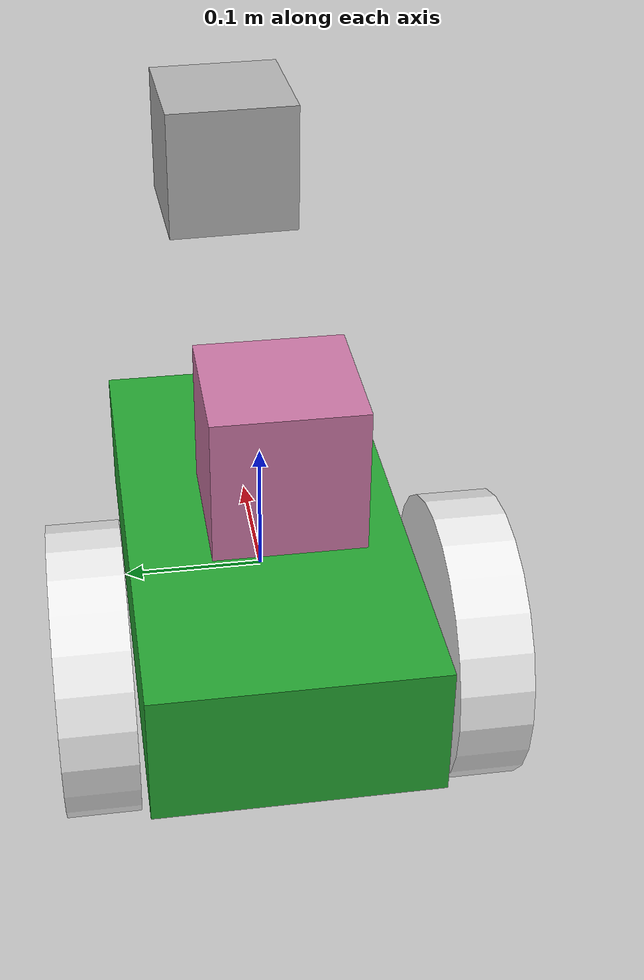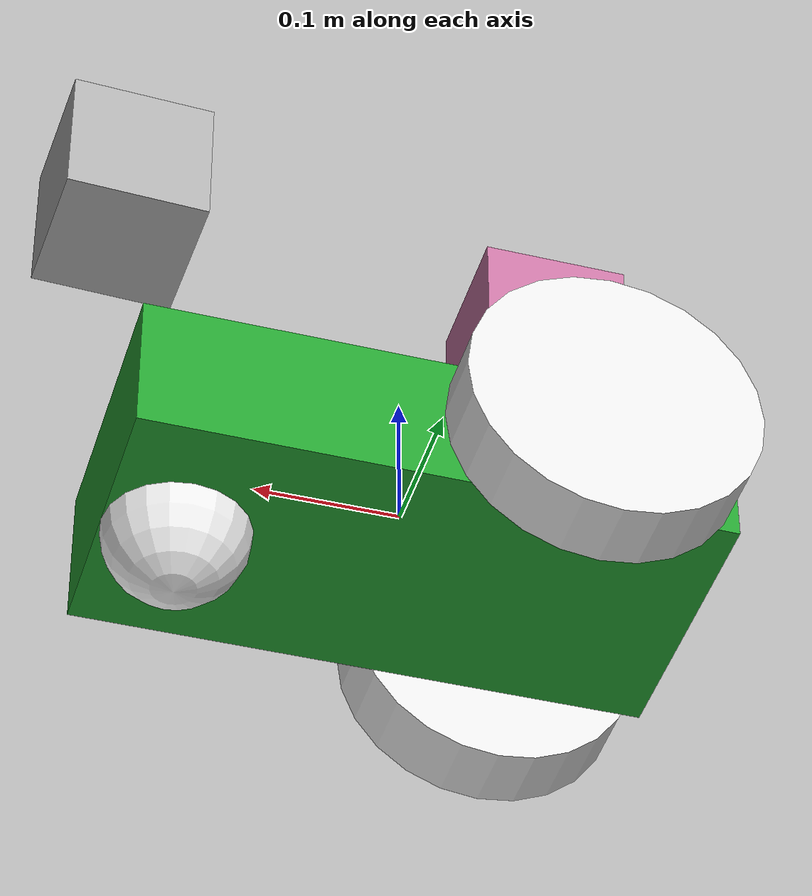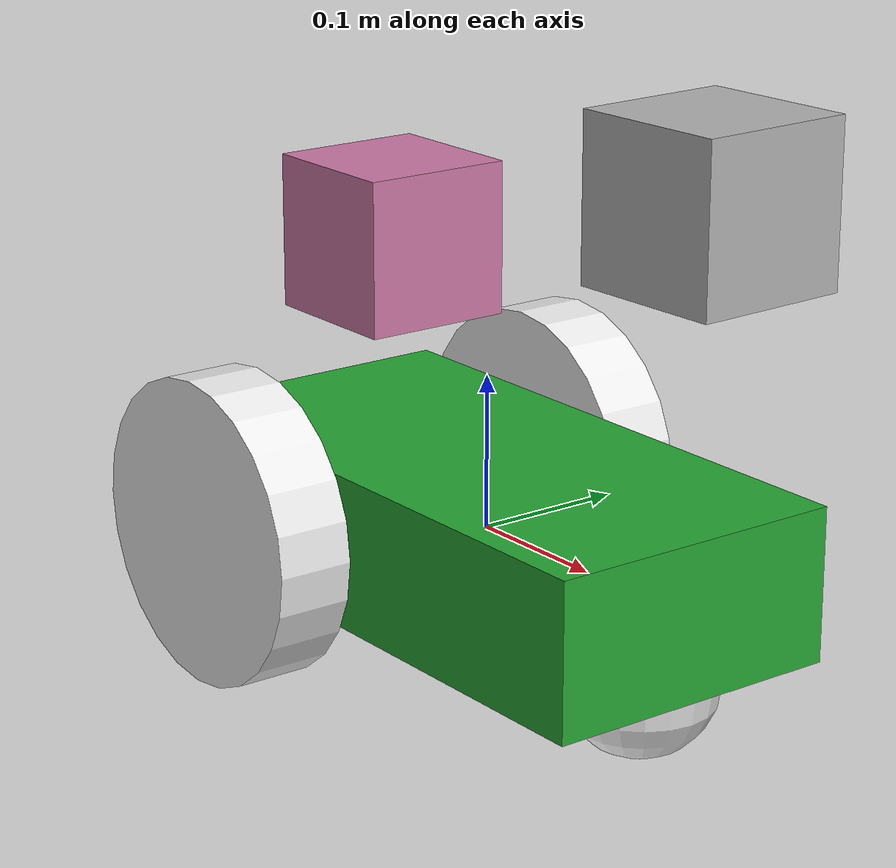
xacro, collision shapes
<?xml version="1.0"?>
<robot name="ExamRobot" xmlns:xacro="http://www.ros.org/wiki/xacro">

<xacro:property name="PI" value="3.1415926535897931"/>

    <!-- Start of Links - first link must be a non-inertial link -->
    <link name='base_link'>
    </link>
	  <link name='base_footprint'>
    </link>

    <link name="chassis">
        <inertial>
            <mass value="10"/>
            <inertia ixx="0.1" ixy="0.0" ixz="0.0" iyy="0.1" iyz="0.0" izz="0.1"/>
        </inertial>
        <collision name="chassis">
            <geometry>
                <box size=".4 .2 .1" />
            </geometry>
        </collision>
        <visual name="chassis">
        <origin rpy="1.55 0 3.15" xyz="0.1 -0.08 0.0"/>
            <geometry>
               <mesh filename="package://examtask/meshes/Car1.stl"  scale="0.11 0.11 0.11"/>
            </geometry>
        </visual>
    </link>

    <link name="castor">
        <inertial>
            <mass value=".1"/>
            <inertia ixx="0.004" ixy="0.0" ixz="0.0" iyy="0.004" iyz="0.0" izz="0.002"/>
        </inertial>
        <collision name="castor">
            <geometry>
                <sphere radius=".05" />
            </geometry>
        </collision>
        <visual name="castor">
            <geometry>
                <sphere radius=".05" />
            </geometry>
        </visual>
    </link>

    <link name="left_wheel">
        <inertial>
            <mass value=".5"/>
            <inertia ixx="0.004" ixy="0.0" ixz="0.0" iyy="0.004" iyz="0.0" izz="0.002"/>
        </inertial>
        <pose>0.1 0.13 0.1 0 1.5707 1.5707</pose>
        <collision name="left_wheel">
            <geometry>
                <cylinder radius='.1' length='.05'/>
            </geometry>
        </collision>
        <visual name="left_wheel">
            <geometry>
                <cylinder radius='.1' length='.05'/>
            </geometry>
        </visual>
    </link>

    <link name="right_wheel">
        <inertial>
            <mass value=".5"/>
            <inertia ixx="0.004" ixy="0.0" ixz="0.0" iyy="0.004" iyz="0.0" izz="0.002"/>
        </inertial>
        <pose>0.1 0.13 0.1 0 1.5707 1.5707</pose>
        <collision name="right_wheel">
            <geometry>
                <cylinder radius='.1' length='.05'/>
            </geometry>
        </collision>
        <visual name="right_wheel">
            <geometry>
                <cylinder radius='.1' length='.05'/>
            </geometry>
        </visual>
    </link>

  <!-- Hokuyo Laser -->
  <link name="hokuyo_link">
    <collision>
      <origin xyz="0 0 0.05" rpy="0 0 0"/>
      <geometry>
    <box size="0.1 0.1 0.1"/>
      </geometry>
    </collision>

    <visual>
      <origin xyz="0 0 0.05" rpy="0 0 0"/>
      <geometry>
        <mesh filename="package://examtask/meshes/hokuyo.dae"/>
      </geometry>
    </visual>

    <inertial>
      <mass value="1e-5" />
      <origin xyz="0 0 0" rpy="0 0 0"/>
      <inertia ixx="1e-6" ixy="0" ixz="0" iyy="1e-6" iyz="0" izz="1e-6" />
    </inertial>
  </link>

  <link name="camera_point_link">
    <collision>
      <origin rpy="1.5708 0 4.75" xyz="-0.3 0 0.15"/>
      <geometry>
       <box size="0.1 0.1 0.1"/>
      </geometry>
      </collision>

     <inertial>
      <mass value="1e-5" />
      <origin xyz="0 0 0" rpy="0 0 0"/>
      <inertia ixx="1e-6" ixy="0" ixz="0" iyy="1e-6" iyz="0" izz="1e-6" />
    </inertial>

</link>

    <!-- Start of Joints - connecting all links together -->

    <joint name="joint0" type="fixed">
        <parent link="base_link"/>
        <child link="chassis"/>
        <origin xyz="0 0 0" rpy="0 0 0"/>
        <axis xyz="0 1 0"/>
        <dynamics damping="0.7"/>
    </joint>

    <joint name="jointA" type="fixed">
        <parent link="base_link"/>
        <child link="base_footprint"/>
        <origin xyz="0 0 0" rpy="0 0 0"/>
        <axis xyz="0 1 0"/>
        <dynamics damping="0.7"/>
    </joint>

    <joint name="joint1" type="fixed">
        <parent link="chassis"/>
        <child link="castor"/>
        <origin xyz=".15 0 -.05" rpy="0 0 0"/>
        <axis xyz="0 1 0"/>
        <dynamics damping="0.7"/>
    </joint>

    <joint type="continuous" name="wheel_left_joint">
        <parent link="chassis"/>
        <child link="left_wheel"/>
        <origin xyz="-0.1 0.13 0" rpy="0 1.5707 1.5707"/>
        <axis xyz="0 0 1"/>
        <calibration rising="0.0"/>
        <dynamics damping="0.0" friction="0.0"/>
        <limit effort="30" velocity="2.0" />
        <safety_controller k_velocity="10" k_position="15" soft_lower_limit="-2.0" soft_upper_limit="0.5" />
    </joint>

    <joint type="continuous" name="wheel_right_joint">
        <parent link="chassis"/>
        <child link="right_wheel"/>
        <origin xyz="-0.1 -0.13 0" rpy="0 1.5707 1.5707"/>
        <axis xyz="0 0 1"/>
        <calibration rising="0.0"/>
        <dynamics damping="0.0" friction="0.0"/>
        <limit effort="30" velocity="2.0" />
        <safety_controller k_velocity="10" k_position="15" soft_lower_limit="-2.0" soft_upper_limit="0.5" />
    </joint>
    <joint name="hokuyo_joint" type="fixed">
        <axis xyz="0 1 0" />
        <origin xyz="-0.1 0 .12" rpy="0 0 ${PI}"/>
        <parent link="base_link"/>
        <child link="hokuyo_link"/>
            <dynamics damping="0.7"/>
      </joint>

      <joint name="joint_base_to_camera" type="fixed">
    <axis xyz="0 1 0" />
    <origin xyz="0.5 0 .1" rpy="0 0 0"/>
    <parent link="base_link"/>
    <child link="camera_point_link"/>
    <dynamics damping="0.7"/>
  </joint>

    <!-- Transmissions are where the ros_controller interacts -->
    <ros2_control name="GazeboSystem" type="system">
      <hardware>
        <plugin>gazebo_ros2_control/GazeboSystem</plugin>
      </hardware>
      <joint name="wheel_left_joint">
        <command_interface name="velocity">
          <param name="min">-1</param>
          <param name="max">1</param>
        </command_interface>
        <state_interface name="position">
          <param name="initial_value">0.0</param>
        </state_interface>
        <state_interface name="velocity">
          <param name="initial_value">0.0</param>
        </state_interface>
      </joint>
      <joint name="wheel_right_joint">
        <command_interface name="velocity">
          <param name="min">-1</param>
          <param name="max">1</param>
        </command_interface>
        <state_interface name="position">
          <param name="initial_value">0.0</param>
        </state_interface>
        <state_interface name="velocity">
          <param name="initial_value">0.0</param>
        </state_interface>
      </joint>
    </ros2_control>

  <gazebo>
    <!-- Joint state publisher -->
    <plugin filename="libgazebo_ros2_control.so" name="gazebo_ros2_control">
      <parameters>$(find examtask)/config/simple_diff_drive.yaml</parameters>

    </plugin>
  </gazebo>

  <gazebo reference="chassis">
  	<material>Gazebo/Green</material>
    	<mu1>.01</mu1>
    	<mu2>.01</mu2>
        <fdir1>1.000000 0.000000 0.000000</fdir1>
        <slip1>1.000000</slip1>
        <slip2>1.000000</slip2>
  </gazebo>

  <gazebo reference="left_wheel">
    	<material>Gazebo/White</material>
    	<mu1>100000</mu1>
    	<mu2>100000</mu2>
        <fdir1>1.000000 0.000000 0.000000</fdir1>
        <slip1>0.000000</slip1>
        <slip2>0.000000</slip2>
  </gazebo>

  <gazebo reference="right_wheel">
    	<material>Gazebo/White</material>
    	<mu1>100000</mu1>
    	<mu2>100000</mu2>
        <fdir1>1.000000 0.000000 0.000000</fdir1>
        <slip1>0.000000</slip1>
        <slip2>0.000000</slip2>
  </gazebo>
  <gazebo reference="castor">
  	<material>Gazebo/White</material>
    	<mu1>.01</mu1>
    	<mu2>.01</mu2>
        <fdir1>1.000000 0.000000 0.000000</fdir1>
        <slip1>1.000000</slip1>
        <slip2>1.000000</slip2>
  </gazebo>

<gazebo reference="hokuyo_link">
  <sensor name="lidar" type="ray">
    <pose>0.215 0 0.215 0 0 0</pose>
    <always_on>true</always_on>
    <visualize>true</visualize>
    <update_rate>5</update_rate>
    <ray>
      <scan>
        <horizontal>
          <samples>720</samples>
          <resolution>1.00000</resolution>
          <min_angle>0.000000</min_angle>
          <max_angle>6.280000</max_angle>
        </horizontal>
      </scan>
      <range>
        <min>0.120000</min>
        <max>14</max>
        <resolution>0.015000</resolution>
      </range>
      <noise>
        <type>gaussian</type>
        <mean>0.0</mean>
        <stddev>0.001</stddev>
      </noise>
    </ray>
    <plugin name="scan" filename="libgazebo_ros_ray_sensor.so">
      <ros>
        <remapping>~/out:=scan</remapping>
      </ros>
      <output_type>sensor_msgs/LaserScan</output_type>
      <frame_name>hokuyo_link</frame_name>
    </plugin>
  </sensor>
  </gazebo>

<gazebo reference="camera_point_link">
<sensor type="camera" name="camera1">
<update_rate>30.0</update_rate>
<camera name="head">
<horizontal_fov>1.3962634</horizontal_fov>
<image>
<width>800</width>
<height>800</height>
<format>R8G8B8</format>
</image>
<clip>
<near>0.02</near>
<far>300</far>
</clip>
<noise>
<type>gaussian</type>
<!-- Noise is sampled independently per pixel on each frame.
That pixel’s noise value is added to each of its color
channels, which at that point lie in the range [0,1]. -->
<mean>0.0</mean>
<stddev>0.007</stddev>
</noise>
</camera>
<plugin name="camera_controller" filename="libgazebo_ros_camera.so">
<alwaysOn>true</alwaysOn>
<updateRate>0.0</updateRate>
<cameraName>/camera</cameraName>
<imageTopicName>image_raw</imageTopicName>
<cameraInfoTopicName>camera_info</cameraInfoTopicName>
<frameName>camera_point_link</frameName>
<hackBaseline>0.07</hackBaseline>
<distortionK1>0.0</distortionK1>
<distortionK2>0.0</distortionK2>
<distortionK3>0.0</distortionK3>
<distortionT1>0.0</distortionT1>
<distortionT2>0.0</distortionT2>
</plugin>
</sensor>
</gazebo>

<gazebo reference="hokuyo_link">
<sensor type="ray" name="head_hokuyo_sensor">
<pose>0 0 0 0 0 0</pose>
<visualize>false</visualize>
<update_rate>40</update_rate>
<ray>
<scan>
<horizontal>
<samples>720</samples>
<resolution>1</resolution>
<min_angle>-1.570796</min_angle>
<max_angle>1.570796</max_angle>
</horizontal>
</scan>
<range>
<min>0.20</min>
<max>15.0</max>
<resolution>0.01</resolution>
</range>
<noise>
<type>gaussian</type>
<!-- Noise parameters based on published spec for Hokuyo laser
achieving "+-30mm" accuracy at range < 10m. A mean of 0.0m and
stddev of 0.01m will put 99.7% of samples within 0.03m of the true
reading. -->
<mean>0.0</mean>
<stddev>0.01</stddev>
</noise>
</ray>
<plugin name="gazebo_ros_head_hokuyo_controller" filename="libgazebo_ros_laser.so">
<topicName>/scan</topicName>
<frameName>hokuyo_link</frameName>
</plugin>
</sensor>
</gazebo>

</robot>
